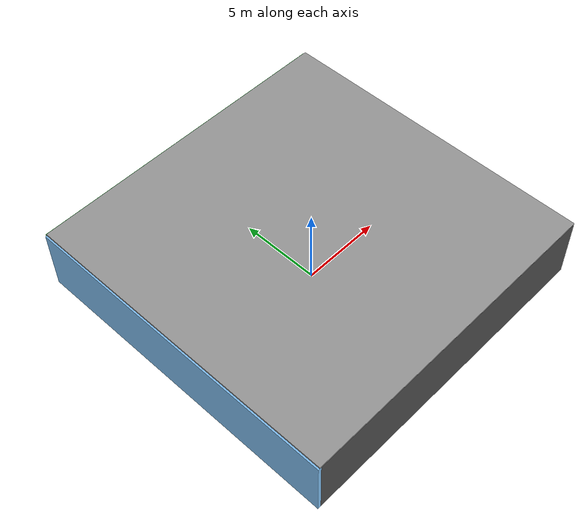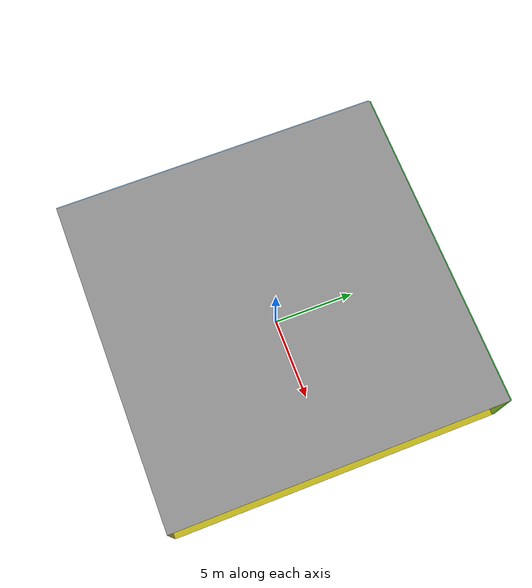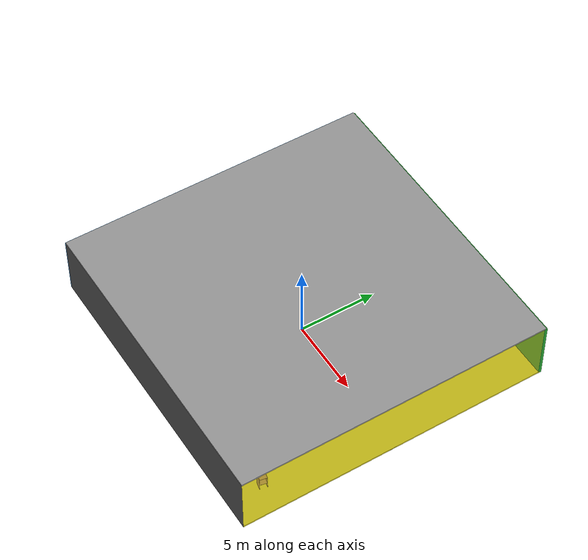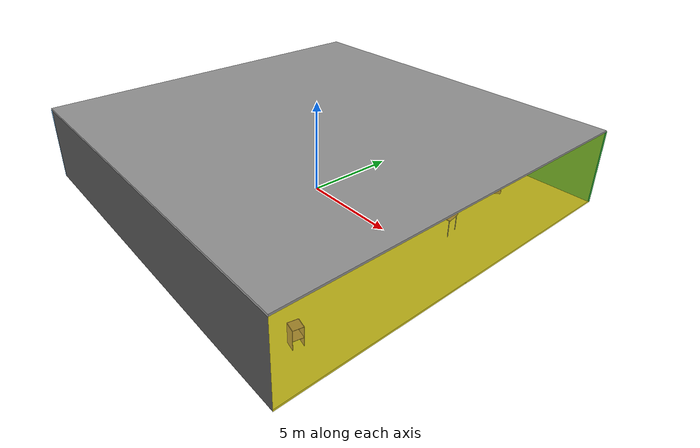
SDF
<sdf version="1.4">
 <world name="default">
  <physics type="ode">
   <max_step_size>0.001</max_step_size>
   <real_time_factor>1</real_time_factor>
   <real_time_update_rate>1000</real_time_update_rate>
   <gravity>0 0 -9.8</gravity>
  </physics>
  <scene><ambient>0.4 0.4 0.4 1</ambient><background>0.7 0.7 0.7 1</background><shadows>1</shadows></scene>
  <model name="Surrounding">
   <static>1</static>
   <link name="Ceiling">
    <collision name="Ceiling_Collision"><geometry><box><size>20 20 0.1</size></box></geometry></collision>
    <visual name="Ceiling_Visual">
     <geometry><box><size>20 20 0.1</size></box></geometry>
     <material>
      <script><uri>file://media/materials/scripts/gazebo.material</uri><name>Gazebo/Grey</name></script>
     </material>
    </visual>
    <pose>0 0 4.05 0 0 0</pose>
   </link>
   <link name="Wall_South">
    <collision name="Wall_South_Collision">
     <geometry><box><size>20 0 4</size></box></geometry>
     <pose>0 0 2 0 -0 0</pose>
    </collision>
    <visual name="Wall_South_Visual">
     <pose>0 0 2 0 -0 0</pose>
     <geometry><box><size>20 0 4</size></box></geometry>
     <material>
      <script><uri>file://media/materials/scripts/gazebo.material</uri><name>Gazebo/Road</name></script>
     </material>
    </visual>
    <velocity_decay><linear>0</linear><angular>0</angular></velocity_decay>
    <pose>0 -10 0 0 -0 0</pose>
   </link>
   <link name="Wall_East">
    <collision name="Wall_21_Collision">
     <geometry><box><size>20 0 4</size></box></geometry>
     <pose>0 0 2 0 -0 0</pose>
    </collision>
    <visual name="Wall_21_Visual">
     <pose>0 0 2 0 -0 0</pose>
     <geometry><box><size>20 0 4</size></box></geometry>
     <material>
      <script>
       <uri>file://media/materials/scripts/gazebo.material</uri>
       <name>Gazebo/YellowTransparent</name>
      </script>
     </material>
    </visual>
    <velocity_decay><linear>0</linear><angular>0</angular></velocity_decay>
    <pose>10 0 0 0 -0 1.5708</pose>
   </link>
   <link name="Wall_North">
    <collision name="Wall_22_Collision">
     <geometry><box><size>20 0.2 4</size></box></geometry>
     <pose>0 0 2 0 -0 0</pose>
    </collision>
    <visual name="Wall_22_Visual">
     <pose>0 0 2 0 -0 0</pose>
     <geometry><box><size>20 0.2 4</size></box></geometry>
     <material>
      <script><uri>file://media/materials/scripts/gazebo.material</uri><name>Gazebo/Green</name></script>
     </material>
    </visual>
    <velocity_decay><linear>0</linear><angular>0</angular></velocity_decay>
    <pose>0 10 0 0 -0 0</pose>
   </link>
   <link name="Wall_West">
    <collision name="Wall_23_Collision">
     <geometry><box><size>20 0.2 4</size></box></geometry>
     <pose>0 0 2 0 -0 0</pose>
    </collision>
    <visual name="Wall_23_Visual">
     <pose>0 0 2 0 -0 0</pose>
     <geometry><box><size>20 0.2 4</size></box></geometry>
     <material>
      <script><uri>file://media/materials/scripts/gazebo.material</uri><name>Gazebo/SkyBlue</name></script>
     </material>
    </visual>
    <velocity_decay><linear>0</linear><angular>0</angular></velocity_decay>
    <pose>-10 0 0 0 0 -1.5708</pose>
   </link>
   <link name="Ground_link">
    <collision name="collision">
     <pose>0 0 .05 0 -0 0</pose>
     <geometry><box><size>20 20 0.1</size></box></geometry>
    </collision>
    <visual name="visual">
     <pose>0 0 .05 0 -0 0</pose>
     <geometry><box><size>20 20 0.1</size></box></geometry>
     <material>
      <script><uri>file://media/materials/scripts/gazebo.material</uri><name>Gazebo/Yellow</name></script>
     </material>
    </visual>
   </link>
   <static>1</static>
  </model>
  <spherical_coordinates>
   <surface_model>EARTH_WGS84</surface_model>
   <latitude_deg>0</latitude_deg>
   <longitude_deg>0</longitude_deg>
   <elevation>0</elevation>
   <heading_deg>0</heading_deg>
  </spherical_coordinates>
  <light name="lightball_0" type="diffuse">
   <diffuse>0.8 0.8 0.8 1</diffuse>
   <specular>0.2 0.2 0.2 1</specular>
   <attenuation>
    <range>100</range>
    <constant>0.7</constant>
    <linear>0.01</linear>
    <quadratic>0.001</quadratic>
   </attenuation>
   <direction>-0.5 0.1 -0.9</direction>
   <pose>-9.37130280515 7.27014077718 2.61580535363 0 0 0</pose>
  </light>
  <light name="lightball_1" type="diffuse">
   <diffuse>0.8 0.8 0.8 1</diffuse>
   <specular>0.2 0.2 0.2 1</specular>
   <attenuation>
    <range>100</range>
    <constant>0.7</constant>
    <linear>0.01</linear>
    <quadratic>0.001</quadratic>
   </attenuation>
   <direction>-0.5 0.1 -0.9</direction>
   <pose>2.19782003502 -8.43008755582 0.828169790479 0 0 0</pose>
  </light>
  <light name="lightball_2" type="diffuse">
   <diffuse>0.8 0.8 0.8 1</diffuse>
   <specular>0.2 0.2 0.2 1</specular>
   <attenuation>
    <range>100</range>
    <constant>0.7</constant>
    <linear>0.01</linear>
    <quadratic>0.001</quadratic>
   </attenuation>
   <direction>-0.5 0.1 -0.9</direction>
   <pose>9.77010762575 6.79524384196 2.29641935428 0 0 0</pose>
  </light>
  <light name="lightball_3" type="diffuse">
   <diffuse>0.8 0.8 0.8 1</diffuse>
   <specular>0.2 0.2 0.2 1</specular>
   <attenuation>
    <range>100</range>
    <constant>0.7</constant>
    <linear>0.01</linear>
    <quadratic>0.001</quadratic>
   </attenuation>
   <direction>-0.5 0.1 -0.9</direction>
   <pose>-0.920833390217 7.7700706499 2.33775443212 0 0 0</pose>
  </light>
  <light name="lightball_4" type="diffuse">
   <diffuse>0.8 0.8 0.8 1</diffuse>
   <specular>0.2 0.2 0.2 1</specular>
   <attenuation>
    <range>100</range>
    <constant>0.7</constant>
    <linear>0.01</linear>
    <quadratic>0.001</quadratic>
   </attenuation>
   <direction>-0.5 0.1 -0.9</direction>
   <pose>-0.730153594603 1.11237981641 3.52911630703 0 0 0</pose>
  </light>
  <light name="lightball_5" type="diffuse">
   <diffuse>0.8 0.8 0.8 1</diffuse>
   <specular>0.2 0.2 0.2 1</specular>
   <attenuation>
    <range>100</range>
    <constant>0.7</constant>
    <linear>0.01</linear>
    <quadratic>0.001</quadratic>
   </attenuation>
   <direction>-0.5 0.1 -0.9</direction>
   <pose>9.01819311311 -3.05445095739 0.729395722472 0 0 0</pose>
  </light>
  <light name="lightball_6" type="diffuse">
   <diffuse>0.8 0.8 0.8 1</diffuse>
   <specular>0.2 0.2 0.2 1</specular>
   <attenuation>
    <range>100</range>
    <constant>0.7</constant>
    <linear>0.01</linear>
    <quadratic>0.001</quadratic>
   </attenuation>
   <direction>-0.5 0.1 -0.9</direction>
   <pose>9.58180832373 2.78858290546 3.08776620146 0 0 0</pose>
  </light>
  <light name="lightball_7" type="diffuse">
   <diffuse>0.8 0.8 0.8 1</diffuse>
   <specular>0.2 0.2 0.2 1</specular>
   <attenuation>
    <range>100</range>
    <constant>0.7</constant>
    <linear>0.01</linear>
    <quadratic>0.001</quadratic>
   </attenuation>
   <direction>-0.5 0.1 -0.9</direction>
   <pose>3.69647564656 7.94836096493 0.79207475293 0 0 0</pose>
  </light>
  <light name="lightball_8" type="diffuse">
   <diffuse>0.8 0.8 0.8 1</diffuse>
   <specular>0.2 0.2 0.2 1</specular>
   <attenuation>
    <range>100</range>
    <constant>0.7</constant>
    <linear>0.01</linear>
    <quadratic>0.001</quadratic>
   </attenuation>
   <direction>-0.5 0.1 -0.9</direction>
   <pose>2.97070220033 -3.40841898236 3.60532101991 0 0 0</pose>
  </light>
  <light name="lightball_9" type="diffuse">
   <diffuse>0.8 0.8 0.8 1</diffuse>
   <specular>0.2 0.2 0.2 1</specular>
   <attenuation>
    <range>100</range>
    <constant>0.7</constant>
    <linear>0.01</linear>
    <quadratic>0.001</quadratic>
   </attenuation>
   <direction>-0.5 0.1 -0.9</direction>
   <pose>9.80447024764 -9.04906678963 2.42877113151 0 0 0</pose>
  </light>
  <light name="lightball_10" type="diffuse">
   <diffuse>0.8 0.8 0.8 1</diffuse>
   <specular>0.2 0.2 0.2 1</specular>
   <attenuation>
    <range>100</range>
    <constant>0.7</constant>
    <linear>0.01</linear>
    <quadratic>0.001</quadratic>
   </attenuation>
   <direction>-0.5 0.1 -0.9</direction>
   <pose>-4.90085954569 3.74273940731 1.62677315839 0 0 0</pose>
  </light>
  <include><uri>model://table</uri><pose>-7.77403658764 -2.05893522471 0 0 0 2.85640016472</pose></include>
  <include>
   <uri>model://construction_cone</uri>
   <pose>-7.6424028706 5.01700178659 0 0 0 0.00317471405294</pose>
  </include>
  <include>
   <uri>model://robocup_3Dsim_goal</uri>
   <pose>-4.53036826592 -4.89024347076 0 0 0 2.22589733515</pose>
  </include>
  <include>
   <uri>model://textured_shapes</uri>
   <pose>-3.84007538939 1.23084540613 0 0 0 1.78496846212</pose>
  </include>
  <include>
   <uri>model://robocup_3Dsim_goal</uri>
   <pose>-5.35112782036 7.35678763097 0 0 0 2.76358082949</pose>
  </include>
  <include>
   <uri>model://construction_cone</uri>
   <pose>1.78354491002 5.27307363325 0 0 0 0.643333804527</pose>
  </include>
  <include>
   <uri>model://textured_shapes</uri>
   <pose>4.15248564131 -6.37155067562 0 0 0 2.49203751181</pose>
  </include>
  <include><uri>model://cabinet</uri><pose>8.24929587672 -7.72985656253 0 0 0 2.93719377597</pose></include>
  <include><uri>model://table</uri><pose>6.67887486887 2.03495228249 0 0 0 0.216272160387</pose></include>
  <include><uri>model://cabinet</uri><pose>6.3698090801 7.08383362854 0 0 0 0.673679005222</pose></include>
 </world>
</sdf>

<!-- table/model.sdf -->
<sdf version="1.5">
  <model name="table">
    <static>true</static>
    <link name="link">
      <collision name="surface">
        <pose>0 0 1.0 0 0 0</pose>
        <geometry>
          <box>
            <size>1.5 0.8 0.03</size>
          </box>
        </geometry>
        <surface>
          <friction>
            <ode>
              <mu>0.6</mu>
              <mu2>0.6</mu2>
            </ode>
          </friction>
        </surface>
      </collision>
      <visual name="visual1">
        <pose>0 0 1.0 0 0 0</pose>
        <geometry>
          <box>
            <size>1.5 0.8 0.03</size>
          </box>
        </geometry>
        <material>
          <script>
            <uri>model://media/materials/scripts/gazebo.material</uri>
            <name>Gazebo/Wood</name>
          </script>
        </material>
      </visual>
      <collision name="front_left_leg">
        <pose>0.68 0.38 0.5 0 0 0</pose>
        <geometry>
          <cylinder>
            <radius>0.02</radius>
            <length>1.0</length>
          </cylinder>
        </geometry>
      </collision>
      <visual name="front_left_leg">
        <pose>0.68 0.38 0.5 0 0 0</pose>
        <geometry>
          <cylinder>
            <radius>0.02</radius>
            <length>1.0</length>
          </cylinder>
        </geometry>
        <material>
          <script>
            <uri>model://media/materials/scripts/gazebo.material</uri>
            <name>Gazebo/Grey</name>
          </script>
        </material>
      </visual>
      <collision name="front_right_leg">
        <pose>0.68 -0.38 0.5 0 0 0</pose>
        <geometry>
          <cylinder>
            <radius>0.02</radius>
            <length>1.0</length>
          </cylinder>
        </geometry>
      </collision>
      <visual name="front_right_leg">
        <pose>0.68 -0.38 0.5 0 0 0</pose>
        <geometry>
          <cylinder>
            <radius>0.02</radius>
            <length>1.0</length>
          </cylinder>
        </geometry>
        <material>
          <script>
            <uri>model://media/materials/scripts/gazebo.material</uri>
            <name>Gazebo/Grey</name>
          </script>
        </material>
      </visual>
      <collision name="back_right_leg">
        <pose>-0.68 -0.38 0.5 0 0 0</pose>
        <geometry>
          <cylinder>
            <radius>0.02</radius>
            <length>1.0</length>
          </cylinder>
        </geometry>
      </collision>
      <visual name="back_right_leg">
        <pose>-0.68 -0.38 0.5 0 0 0</pose>
        <geometry>
          <cylinder>
            <radius>0.02</radius>
            <length>1.0</length>
          </cylinder>
        </geometry>
        <material>
          <script>
            <uri>model://media/materials/scripts/gazebo.material</uri>
            <name>Gazebo/Grey</name>
          </script>
        </material>
      </visual>
      <collision name="back_left_leg">
        <pose>-0.68 0.38 0.5 0 0 0</pose>
        <geometry>
          <cylinder>
            <radius>0.02</radius>
            <length>1.0</length>
          </cylinder>
        </geometry>
      </collision>
      <visual name="back_left_leg">
        <pose>-0.68 0.38 0.5 0 0 0</pose>
        <geometry>
          <cylinder>
            <radius>0.02</radius>
            <length>1.0</length>
          </cylinder>
        </geometry>
        <material>
          <script>
            <uri>model://media/materials/scripts/gazebo.material</uri>
            <name>Gazebo/Grey</name>
          </script>
        </material>
      </visual>
    </link>
  </model>
</sdf>

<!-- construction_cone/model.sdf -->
<sdf version="1.5">
  <model name="Construction Cone">
    <link name="link">
      <collision name="collision">
        <geometry>
          <mesh>
            <scale>10 10 10</scale>
            <uri>file://isr-testbed/construction_cone/meshes/construction_cone.dae</uri>
          </mesh>
        </geometry>
      </collision>
      <visual name="visual">
        <geometry>
          <mesh>
            <scale>10 10 10</scale>
            <uri>file://isr-testbed/construction_cone/meshes/construction_cone.dae</uri>
          </mesh>
        </geometry>
      </visual>
    </link>
  </model>
</sdf>

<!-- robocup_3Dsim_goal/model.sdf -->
<sdf version="1.5">
  <model name="robocup_3d_goal">
    <static>true</static>
    <link name="left_post">
      <pose>0 1.05 0.45 0 0 0</pose>
      <collision name="collision">
        <geometry>
          <cylinder>
            <radius>0.05</radius>
            <length>0.9</length>
          </cylinder>
        </geometry>
      </collision>
      <visual name="visual">
        <geometry>
          <cylinder>
            <radius>0.05</radius>
            <length>0.9</length>
          </cylinder>
        </geometry>
        <material>
          <script>
            <uri>file://media/materials/scripts/gazebo.material</uri>
            <name>Gazebo/ZincYellow</name>
          </script>
        </material>
      </visual>
    </link>
    <link name="left_support_horiz_lower">
      <pose>0.30 1.05 0.01 0 0 0</pose>
      <collision name="collision">
        <geometry>
          <box>
            <size>0.50 0.02 0.02</size>
          </box>
        </geometry>
      </collision>
      <visual name="visual">
        <geometry>
          <box>
            <size>0.50 0.02 0.02</size>
          </box>
        </geometry>
        <material>
          <script>
            <uri>file://media/materials/scripts/gazebo.material</uri>
            <name>Gazebo/White</name>
          </script>
        </material>
      </visual>
    </link>
    <link name="left_support_horiz_upper">
      <pose>0.30 1.05 0.79 0 0 0</pose>
      <collision name="collision">
        <geometry>
          <box>
            <size>0.50 0.02 0.02</size>
          </box>
        </geometry>
      </collision>
      <visual name="visual">
        <geometry>
          <box>
            <size>0.50 0.02 0.02</size>
          </box>
        </geometry>
        <material>
          <script>
            <uri>file://media/materials/scripts/gazebo.material</uri>
            <name>Gazebo/White</name>
          </script>
        </material>
      </visual>
    </link>
    <link name="left_support_vertical">
      <pose>0.56 1.05 0.4 0 1.5708 0</pose>
      <collision name="collision">
        <geometry>
          <box>
            <size>0.80 0.02 0.02</size>
          </box>
        </geometry>
      </collision>
      <visual name="visual">
        <geometry>
          <box>
            <size>0.80 0.02 0.02</size>
          </box>
        </geometry>
        <material>
          <script>
            <uri>file://media/materials/scripts/gazebo.material</uri>
            <name>Gazebo/White</name>
          </script>
        </material>
      </visual>
    </link>
    <link name="right_support_horiz_lower">
      <pose>0.30 -1.05 0.01 0 0 0</pose>
      <collision name="collision">
        <geometry>
          <box>
            <size>0.50 0.02 0.02</size>
          </box>
        </geometry>
      </collision>
      <visual name="visual">
        <geometry>
          <box>
            <size>0.50 0.02 0.02</size>
          </box>
        </geometry>
        <material>
          <script>
            <uri>file://media/materials/scripts/gazebo.material</uri>
            <name>Gazebo/White</name>
          </script>
        </material>
      </visual>
    </link>
    <link name="right_support_horiz_upper">
      <pose>0.30 -1.05 0.79 0 0 0</pose>
      <collision name="collision">
        <geometry>
          <box>
            <size>0.50 0.02 0.02</size>
          </box>
        </geometry>
      </collision>
      <visual name="visual">
        <geometry>
          <box>
            <size>0.50 0.02 0.02</size>
          </box>
        </geometry>
        <material>
          <script>
            <uri>file://media/materials/scripts/gazebo.material</uri>
            <name>Gazebo/White</name>
          </script>
        </material>
      </visual>
    </link>
    <link name="right_support_vertical">
      <pose>0.56 -1.05 0.4 0 1.5708 0</pose>
      <collision name="collision">
        <geometry>
          <box>
            <size>0.80 0.02 0.02</size>
          </box>
        </geometry>
      </collision>
      <visual name="visual">
        <geometry>
          <box>
            <size>0.80 0.02 0.02</size>
          </box>
        </geometry>
        <material>
          <script>
            <uri>file://media/materials/scripts/gazebo.material</uri>
            <name>Gazebo/White</name>
          </script>
        </material>
      </visual>
    </link>
    <link name="center_support_horiz_lower">
      <pose>0.56 0 0.01 0 1.5708 0</pose>
      <collision name="collision">
        <geometry>
          <box>
            <size>0.02 2.08 0.02</size>
          </box>
        </geometry>
      </collision>
      <visual name="visual">
        <geometry>
          <box>
            <size>0.02 2.08 0.02</size>
          </box>
        </geometry>
        <material>
          <script>
            <uri>file://media/materials/scripts/gazebo.material</uri>
            <name>Gazebo/White</name>
          </script>
        </material>
      </visual>
    </link>
    <link name="center_support_horiz_upper">
      <pose>0.56 0 0.79 0 1.5708 0</pose>
      <collision name="collision">
        <geometry>
          <box>
            <size>0.02 2.08 0.02</size>
          </box>
        </geometry>
      </collision>
      <visual name="visual">
        <geometry>
          <box>
            <size>0.02 2.08 0.02</size>
          </box>
        </geometry>
        <material>
          <script>
            <uri>file://media/materials/scripts/gazebo.material</uri>
            <name>Gazebo/White</name>
          </script>
        </material>
      </visual>
    </link>
    <link name="right_post">
      <pose>0 -1.05 0.45 0 0 0</pose>
      <collision name="collision">
        <geometry>
          <cylinder>
            <radius>0.05</radius>
            <length>0.9</length>
          </cylinder>
        </geometry>
      </collision>
      <visual name="visual">
        <geometry>
          <cylinder>
            <radius>0.05</radius>
            <length>0.9</length>
          </cylinder>
        </geometry>
        <material>
          <script>
            <uri>file://media/materials/scripts/gazebo.material</uri>
            <name>Gazebo/ZincYellow</name>
          </script>
        </material>
      </visual>
    </link>
    <link name="crossbar">
      <pose>0 0 0.85 1.57 1.57 0</pose>
      <collision name="collision">
        <geometry>
          <cylinder>
            <radius>0.05</radius>
            <length>2.0</length>
          </cylinder>
        </geometry>
      </collision>
      <visual name="visual">
        <geometry>
          <cylinder>
            <radius>0.05</radius>
            <length>2.0</length>
          </cylinder>
        </geometry>
        <material>
          <script>
            <uri>file://media/materials/scripts/gazebo.material</uri>
            <name>Gazebo/ZincYellow</name>
          </script>
        </material>
      </visual>
    </link>
    <link name="center_net">
      <pose>0.56 0 0.40 0 0 0</pose>
      <collision name="collision">
        <geometry>
          <box>
            <size>0.01 2.1 0.80</size>
          </box>
        </geometry>
      </collision>
      <visual name="visual">
        <geometry>
          <box>
            <size>0.01 2.1 0.80</size>
          </box>
        </geometry>
        <material>
          <script>
            <uri>model://../model_source/models/robocup09_spl_field/materials/scripts/</uri>
            <uri>model://../model_source/models/robocup09_spl_field/materials/textures/</uri>
            <name>RoboCup/Net</name>
          </script>
        </material>
      </visual>
    </link>
    <link name="left_net">
      <pose>0.30 1.05 0.40 0 0 0</pose>
      <collision name="collision">
        <geometry>
          <box>
            <size>0.50 0.01 0.76</size>
          </box>
        </geometry>
      </collision>
      <visual name="visual">
        <geometry>
          <box>
            <size>0.50 0.01 0.76</size>
          </box>
        </geometry>
        <material>
          <script>
            <uri>model://../model_source/models/robocup09_spl_field/materials/scripts/</uri>
            <uri>model://../model_source/models/robocup09_spl_field/materials/textures/</uri>
            <name>RoboCup/Net</name>
          </script>
        </material>
      </visual>
    </link>
    <link name="right_net">
      <pose>0.30 -1.05 0.40 0 0 0</pose>
      <collision name="collision">
        <geometry>
          <box>
            <size>0.50 0.01 0.76</size>
          </box>
        </geometry>
      </collision>
      <visual name="visual">
        <geometry>
          <box>
            <size>0.50 0.01 0.76</size>
          </box>
        </geometry>
        <material>
          <script>
            <uri>model://../model_source/models/robocup09_spl_field/materials/scripts/</uri>
            <uri>model://../model_source/models/robocup09_spl_field/materials/textures/</uri>
            <name>RoboCup/Net</name>
          </script>
        </material>
      </visual>
    </link>
  </model>
</sdf>

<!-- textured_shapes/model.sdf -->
<sdf version="1.6">
  <model name="textured_shapes">
    <pose>0 0 0.5 0 0 0</pose>
    <link name="box">
      <pose>0 -1.5 0 0 0 0</pose>
      <collision name="collision">
        <geometry>
          <box>
            <size>1 1 1</size>
          </box>
        </geometry>
      </collision>
      <visual name="visual">
        <geometry>
          <box>
            <size>1 1 1</size>
          </box>
        </geometry>
        <material>
          <script>
            <uri>model://../model_source/models/textured_shapes/materials/scripts</uri>
            <uri>model://../model_source/models/textured_shapes/materials/textures</uri>
            <name>TexturedShape/Squares</name>
          </script>
        </material>
      </visual>
    </link>
    <link name="sphere">
      <collision name="collision">
        <geometry>
          <sphere>
            <radius>0.5</radius>
          </sphere>
        </geometry>
      </collision>
      <visual name="visual">
        <geometry>
          <sphere>
            <radius>0.5</radius>
          </sphere>
        </geometry>
        <material>
          <script>
            <uri>model://../model_source/models/textured_shapes/materials/scripts</uri>
            <uri>model://../model_source/models/textured_shapes/materials/textures</uri>
            <name>TexturedShape/Squares</name>
          </script>
        </material>
      </visual>
    </link>
    <link name="cylinder">
      <pose>0 1.5 0 0 0 0</pose>
      <collision name="collision">
        <geometry>
          <cylinder>
            <radius>0.5</radius>
            <length>1</length>
          </cylinder>
        </geometry>
      </collision>
      <visual name="visual">
        <geometry>
          <cylinder>
            <radius>0.5</radius>
            <length>1</length>
          </cylinder>
        </geometry>
        <material>
          <script>
            <uri>model://../model_source/models/textured_shapes/materials/scripts</uri>
            <uri>model://../model_source/models/textured_shapes/materials/textures</uri>
            <name>TexturedShape/Squares</name>
          </script>
        </material>
      </visual>
    </link>
  </model>
</sdf>

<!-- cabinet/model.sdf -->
<sdf version="1.5">
  <model name="cabinet">
    <static>true</static>
    <link name="cabinet_bottom_plate">
      <inertial>
        <pose>0 0 -1 0 0 0</pose>
        <inertia>
          <ixx>2.050000</ixx>
          <ixy>0</ixy>
          <ixz>0</ixz>
          <iyy>2.050000</iyy>
          <iyz>0</iyz>
          <izz>2.050000</izz>
        </inertia>
        <mass>25.000000</mass>
      </inertial>
      <collision name="cabinet_bottom_plate_geom">
        <pose>0 0 0.010000 0 0 0</pose>
        <geometry>
          <box>
            <size>0.450000 0.450000 0.020000</size>
          </box>
        </geometry>
      </collision>
      <visual name="cabinet_bottom_plate_geom_visual">
        <pose>0 0 0.010000 0 0 0</pose>
        <geometry>
          <box>
            <size>0.450000 0.450000 0.020000</size>
          </box>
        </geometry>
        <material>
          <script>
            <uri>model://media/materials/scripts/gazebo.material</uri>
            <name>Gazebo/Wood</name>
          </script>
        </material>
      </visual>
      <collision name="cabinet_bottom_plate_geom_cabinet_back_plate">
        <pose>0.235000 0 0.510000 0 0 0</pose>
        <geometry>
          <box>
            <size>0.020000 0.450000 1.020000</size>
          </box>
        </geometry>
      </collision>
      <visual name="cabinet_bottom_plate_geom_cabinet_back_plate_visual">
        <pose>0.235000 0 0.510000 0 0 0</pose>
        <geometry>
          <box>
            <size>0.020000 0.450000 1.020000</size>
          </box>
        </geometry>
        <material>
          <script>
            <uri>model://media/materials/scripts/gazebo.material</uri>
            <name>Gazebo/Wood</name>
          </script>
        </material>
      </visual>
      <collision name="cabinet_bottom_plate_geom_cabinet_left_plate">
        <pose>0 0.235000 0.510000 0 0 0</pose>
        <geometry>
          <box>
            <size>0.450000 0.020000 1.020000</size>
          </box>
        </geometry>
      </collision>
      <visual name="cabinet_bottom_plate_geom_cabinet_left_plate_visual">
        <pose>0 0.235000 0.510000 0 0 0</pose>
        <geometry>
          <box>
            <size>0.450000 0.020000 1.020000</size>
          </box>
        </geometry>
        <material>
          <script>
            <uri>model://media/materials/scripts/gazebo.material</uri>
            <name>Gazebo/Wood</name>
          </script>
        </material>
      </visual>
      <collision name="cabinet_bottom_plate_geom_cabinet_middle_plate">
        <pose>0 0 0.510000 0 0 0</pose>
        <geometry>
          <box>
            <size>0.450000 0.450000 0.020000</size>
          </box>
        </geometry>
      </collision>
      <visual name="cabinet_bottom_plate_geom_cabinet_middle_plate_visual">
        <pose>0 0 0.510000 0 0 0</pose>
        <geometry>
          <box>
            <size>0.450000 0.450000 0.020000</size>
          </box>
        </geometry>
        <material>
          <script>
            <uri>model://media/materials/scripts/gazebo.material</uri>
            <name>Gazebo/Wood</name>
          </script>
        </material>
      </visual>
      <collision name="cabinet_bottom_plate_geom_cabinet_right_plate">
        <pose>0 -0.235000 0.510000 0 0 0</pose>
        <geometry>
          <box>
            <size>0.450000 0.020000 1.020000</size>
          </box>
        </geometry>
      </collision>
      <visual name="cabinet_bottom_plate_geom_cabinet_right_plate_visual">
        <pose>0 -0.235000 0.510000 0 0 0</pose>
        <geometry>
          <box>
            <size>0.450000 0.020000 1.020000</size>
          </box>
        </geometry>
        <material>
          <script>
            <uri>model://media/materials/scripts/gazebo.material</uri>
            <name>Gazebo/Wood</name>
          </script>
        </material>
      </visual>
      <collision name="cabinet_bottom_plate_geom_cabinet_top_plate">
        <pose>0 0 1.010000 0 0 0</pose>
        <geometry>
          <box>
            <size>0.450000 0.450000 0.020000</size>
          </box>
        </geometry>
      </collision>
      <visual name="cabinet_bottom_plate_geom_cabinet_top_plate_visual">
        <pose>0 0 1.010000 0 0 0</pose>
        <geometry>
          <box>
            <size>0.450000 0.450000 0.020000</size>
          </box>
        </geometry>
        <material>
          <script>
            <uri>model://media/materials/scripts/gazebo.material</uri>
            <name>Gazebo/Wood</name>
          </script>
        </material>
      </visual>
    </link>
  </model>
</sdf>
